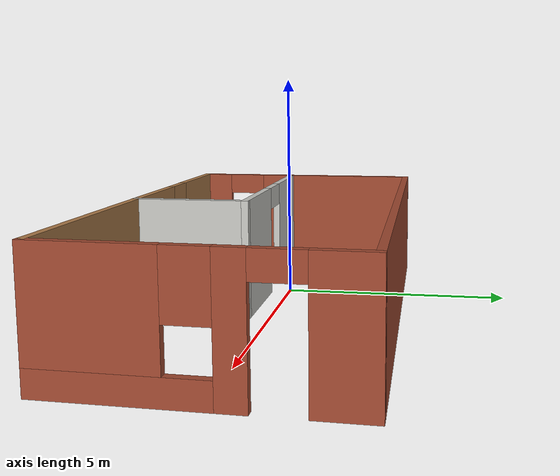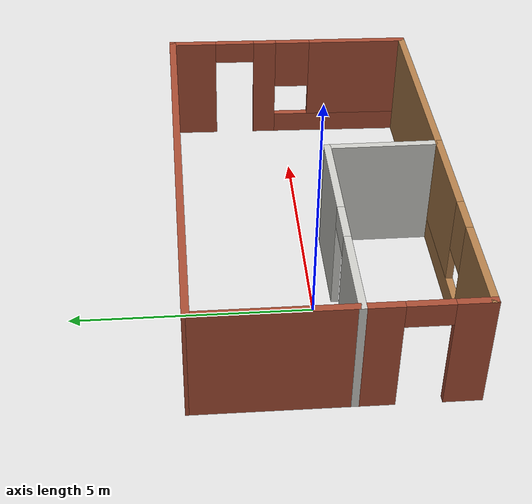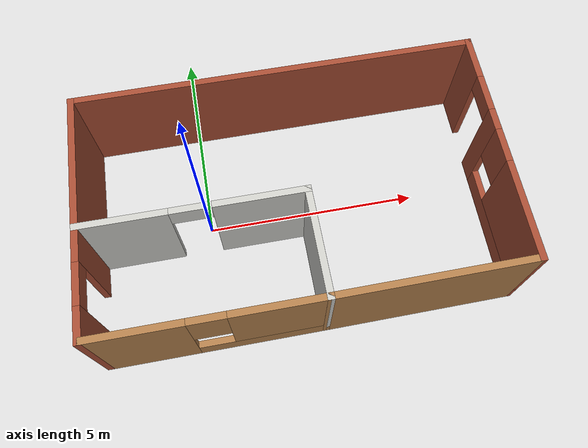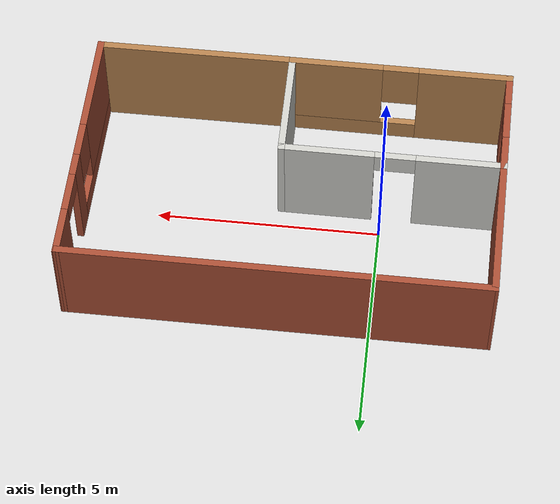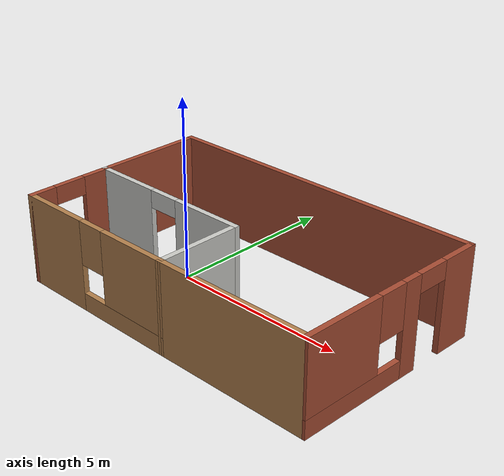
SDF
<?xml version='1.0'?>
<sdf version='1.6'>
  <model name='Building'>
    <pose frame=''>2.06014 -0.084101 0 0 -0 0</pose>
    <link name='Wall_0'>
      <pose frame=''>-2.23514 -2.7359 0 0 -0 0</pose>
      <visual name='Wall_0_Visual_0'>
        <pose frame=''>-1.4525 0 1.25 0 -0 0</pose>
        <geometry>
          <box>
            <size>2.095 0.15 2.5</size>
          </box>
        </geometry>
        <material>
          <script>
            <uri>file://media/materials/scripts/gazebo.material</uri>
            <name>Gazebo/Wood</name>
          </script>
          <ambient>0.921569 0.807843 0.615686 1</ambient>
        </material>
        <meta>
          <layer>0</layer>
        </meta>
      </visual>
      <collision name='Wall_0_Collision_0'>
        <geometry>
          <box>
            <size>2.095 0.15 2.5</size>
          </box>
        </geometry>
        <pose frame=''>-1.4525 0 1.25 0 -0 0</pose>
      </collision>
      <visual name='Wall_0_Visual_1'>
        <pose frame=''>1.0475 0 0.25 0 -0 0</pose>
        <geometry>
          <box>
            <size>2.905 0.15 0.5</size>
          </box>
        </geometry>
        <material>
          <script>
            <uri>file://media/materials/scripts/gazebo.material</uri>
            <name>Gazebo/Wood</name>
          </script>
          <ambient>0.921569 0.807843 0.615686 1</ambient>
        </material>
        <meta>
          <layer>0</layer>
        </meta>
      </visual>
      <collision name='Wall_0_Collision_1'>
        <geometry>
          <box>
            <size>2.905 0.15 0.5</size>
          </box>
        </geometry>
        <pose frame=''>1.0475 0 0.25 0 -0 0</pose>
      </collision>
      <visual name='Wall_0_Visual_2'>
        <pose frame=''>1.4475 0 1.5 0 -0 0</pose>
        <geometry>
          <box>
            <size>2.105 0.15 2</size>
          </box>
        </geometry>
        <material>
          <script>
            <uri>file://media/materials/scripts/gazebo.material</uri>
            <name>Gazebo/Wood</name>
          </script>
          <ambient>0.921569 0.807843 0.615686 1</ambient>
        </material>
        <meta>
          <layer>0</layer>
        </meta>
      </visual>
      <collision name='Wall_0_Collision_2'>
        <geometry>
          <box>
            <size>2.105 0.15 2</size>
          </box>
        </geometry>
        <pose frame=''>1.4475 0 1.5 0 -0 0</pose>
      </collision>
      <visual name='Wall_0_Visual_3'>
        <pose frame=''>-0.005 0 1.9 0 -0 0</pose>
        <geometry>
          <box>
            <size>0.8 0.15 1.2</size>
          </box>
        </geometry>
        <material>
          <script>
            <uri>file://media/materials/scripts/gazebo.material</uri>
            <name>Gazebo/Wood</name>
          </script>
          <ambient>0.921569 0.807843 0.615686 1</ambient>
        </material>
        <meta>
          <layer>0</layer>
        </meta>
      </visual>
      <collision name='Wall_0_Collision_3'>
        <geometry>
          <box>
            <size>0.8 0.15 1.2</size>
          </box>
        </geometry>
        <pose frame=''>-0.005 0 1.9 0 -0 0</pose>
      </collision>
    </link>
    <link name='Wall_1'>
      <collision name='Wall_1_Collision'>
        <geometry>
          <box>
            <size>2.5 0.15 2.5</size>
          </box>
        </geometry>
        <pose frame=''>0 0 1.25 0 -0 0</pose>
      </collision>
      <visual name='Wall_1_Visual'>
        <pose frame=''>0 0 1.25 0 -0 0</pose>
        <geometry>
          <box>
            <size>2.5 0.15 2.5</size>
          </box>
        </geometry>
        <material>
          <script>
            <uri>file://media/materials/scripts/gazebo.material</uri>
            <name>Gazebo/CeilingTiled</name>
          </script>
          <ambient>1 1 1 1</ambient>
        </material>
        <meta>
          <layer>0</layer>
        </meta>
      </visual>
      <pose frame=''>0.189859 -1.5609 0 0 -0 1.5708</pose>
    </link>
    <link name='Wall_2'>
      <pose frame=''>-2.23514 -0.385899 0 0 -0 3.14159</pose>
      <visual name='Wall_2_Visual_0'>
        <pose frame=''>-1.44337 0 1.25 0 -0 0</pose>
        <geometry>
          <box>
            <size>2.11326 0.15 2.5</size>
          </box>
        </geometry>
        <material>
          <script>
            <uri>file://media/materials/scripts/gazebo.material</uri>
            <name>Gazebo/CeilingTiled</name>
          </script>
          <ambient>0.921569 0.807843 0.615686 1</ambient>
        </material>
        <meta>
          <layer>0</layer>
        </meta>
      </visual>
      <collision name='Wall_2_Collision_0'>
        <geometry>
          <box>
            <size>2.11326 0.15 2.5</size>
          </box>
        </geometry>
        <pose frame=''>-1.44337 0 1.25 0 -0 0</pose>
      </collision>
      <visual name='Wall_2_Visual_1'>
        <pose frame=''>1.50663 0 1.25 0 -0 0</pose>
        <geometry>
          <box>
            <size>1.98674 0.15 2.5</size>
          </box>
        </geometry>
        <material>
          <script>
            <uri>file://media/materials/scripts/gazebo.material</uri>
            <name>Gazebo/CeilingTiled</name>
          </script>
          <ambient>0.921569 0.807843 0.615686 1</ambient>
        </material>
        <meta>
          <layer>0</layer>
        </meta>
      </visual>
      <collision name='Wall_2_Collision_1'>
        <geometry>
          <box>
            <size>1.98674 0.15 2.5</size>
          </box>
        </geometry>
        <pose frame=''>1.50663 0 1.25 0 -0 0</pose>
      </collision>
      <visual name='Wall_2_Visual_2'>
        <pose frame=''>0.063261 0 2.25 0 -0 0</pose>
        <geometry>
          <box>
            <size>0.9 0.15 0.5</size>
          </box>
        </geometry>
        <material>
          <script>
            <uri>file://media/materials/scripts/gazebo.material</uri>
            <name>Gazebo/CeilingTiled</name>
          </script>
          <ambient>0.921569 0.807843 0.615686 1</ambient>
        </material>
        <meta>
          <layer>0</layer>
        </meta>
      </visual>
      <collision name='Wall_2_Collision_2'>
        <geometry>
          <box>
            <size>0.9 0.15 0.5</size>
          </box>
        </geometry>
        <pose frame=''>0.063261 0 2.25 0 -0 0</pose>
      </collision>
    </link>
    <link name='Wall_3'>
      <pose frame=''>-4.66014 -1.5609 0 0 0 -1.5708</pose>
      <visual name='Wall_3_Visual_0'>
        <pose frame=''>-0.8325 0 1.25 0 -0 0</pose>
        <geometry>
          <box>
            <size>0.835 0.15 2.5</size>
          </box>
        </geometry>
        <material>
          <script>
            <uri>file://media/materials/scripts/gazebo.material</uri>
            <name>Gazebo/Bricks</name>
          </script>
          <ambient>0.921569 0.807843 0.615686 1</ambient>
        </material>
        <meta>
          <layer>0</layer>
        </meta>
      </visual>
      <collision name='Wall_3_Collision_0'>
        <geometry>
          <box>
            <size>0.835 0.15 2.5</size>
          </box>
        </geometry>
        <pose frame=''>-0.8325 0 1.25 0 -0 0</pose>
      </collision>
      <visual name='Wall_3_Visual_1'>
        <pose frame=''>0.8675 0 1.25 0 -0 0</pose>
        <geometry>
          <box>
            <size>0.765 0.15 2.5</size>
          </box>
        </geometry>
        <material>
          <script>
            <uri>file://media/materials/scripts/gazebo.material</uri>
            <name>Gazebo/Bricks</name>
          </script>
          <ambient>0.921569 0.807843 0.615686 1</ambient>
        </material>
        <meta>
          <layer>0</layer>
        </meta>
      </visual>
      <collision name='Wall_3_Collision_1'>
        <geometry>
          <box>
            <size>0.765 0.15 2.5</size>
          </box>
        </geometry>
        <pose frame=''>0.8675 0 1.25 0 -0 0</pose>
      </collision>
      <visual name='Wall_3_Visual_2'>
        <pose frame=''>0.035 0 2.25 0 -0 0</pose>
        <geometry>
          <box>
            <size>0.9 0.15 0.5</size>
          </box>
        </geometry>
        <material>
          <script>
            <uri>file://media/materials/scripts/gazebo.material</uri>
            <name>Gazebo/Bricks</name>
          </script>
          <ambient>0.921569 0.807843 0.615686 1</ambient>
        </material>
        <meta>
          <layer>0</layer>
        </meta>
      </visual>
      <collision name='Wall_3_Collision_2'>
        <geometry>
          <box>
            <size>0.9 0.15 0.5</size>
          </box>
        </geometry>
        <pose frame=''>0.035 0 2.25 0 -0 0</pose>
      </collision>
    </link>
    <link name='Wall_5'>
      <collision name='Wall_5_Collision'>
        <geometry>
          <box>
            <size>3.25 0.15 2.5</size>
          </box>
        </geometry>
        <pose frame=''>0 0 1.25 0 -0 0</pose>
      </collision>
      <visual name='Wall_5_Visual'>
        <pose frame=''>0 0 1.25 0 -0 0</pose>
        <geometry>
          <box>
            <size>3.25 0.15 2.5</size>
          </box>
        </geometry>
        <material>
          <script>
            <uri>file://media/materials/scripts/gazebo.material</uri>
            <name>Gazebo/Bricks</name>
          </script>
          <ambient>0.921569 0.807843 0.615686 1</ambient>
        </material>
        <meta>
          <layer>0</layer>
        </meta>
      </visual>
      <pose frame=''>-4.66014 1.1641 0 0 -0 1.5708</pose>
    </link>
    <link name='Wall_6'>
      <collision name='Wall_6_Collision'>
        <geometry>
          <box>
            <size>9.44832 0.15 2.5</size>
          </box>
        </geometry>
        <pose frame=''>0 0 1.25 0 -0 0</pose>
      </collision>
      <visual name='Wall_6_Visual'>
        <pose frame=''>0 0 1.25 0 -0 0</pose>
        <geometry>
          <box>
            <size>9.44832 0.15 2.5</size>
          </box>
        </geometry>
        <material>
          <script>
            <uri>file://media/materials/scripts/gazebo.material</uri>
            <name>Gazebo/Bricks</name>
          </script>
          <ambient>0.435294 0.796078 0.67451 1</ambient>
        </material>
        <meta>
          <layer>0</layer>
        </meta>
      </visual>
      <pose frame=''>-0.010993 2.72416 0 0 -0 0.002163</pose>
    </link>
    <link name='Wall_7'>
      <pose frame=''>4.58327 0.009214 0 0 0 -1.59831</pose>
      <visual name='Wall_7_Visual_0'>
        <pose frame=''>-2.25462 0 1.25 0 -0 0</pose>
        <geometry>
          <box>
            <size>1.09283 0.15 2.5</size>
          </box>
        </geometry>
        <material>
          <script>
            <uri>file://media/materials/scripts/gazebo.material</uri>
            <name>Gazebo/Bricks</name>
          </script>
          <ambient>0.435294 0.796078 0.67451 1</ambient>
        </material>
        <meta>
          <layer>0</layer>
        </meta>
      </visual>
      <collision name='Wall_7_Collision_0'>
        <geometry>
          <box>
            <size>1.09283 0.15 2.5</size>
          </box>
        </geometry>
        <pose frame=''>-2.25462 0 1.25 0 -0 0</pose>
      </collision>
      <visual name='Wall_7_Visual_1'>
        <pose frame=''>-0.544944 0 1.25 0 -0 0</pose>
        <geometry>
          <box>
            <size>0.526518 0.15 2.5</size>
          </box>
        </geometry>
        <material>
          <script>
            <uri>file://media/materials/scripts/gazebo.material</uri>
            <name>Gazebo/Bricks</name>
          </script>
          <ambient>0.435294 0.796078 0.67451 1</ambient>
        </material>
        <meta>
          <layer>0</layer>
        </meta>
      </visual>
      <collision name='Wall_7_Collision_1'>
        <geometry>
          <box>
            <size>0.526518 0.15 2.5</size>
          </box>
        </geometry>
        <pose frame=''>-0.544944 0 1.25 0 -0 0</pose>
      </collision>
      <visual name='Wall_7_Visual_2'>
        <pose frame=''>1.25967 0 0.25 0 -0 0</pose>
        <geometry>
          <box>
            <size>3.08272 0.15 0.5</size>
          </box>
        </geometry>
        <material>
          <script>
            <uri>file://media/materials/scripts/gazebo.material</uri>
            <name>Gazebo/Bricks</name>
          </script>
          <ambient>0.435294 0.796078 0.67451 1</ambient>
        </material>
        <meta>
          <layer>0</layer>
        </meta>
      </visual>
      <collision name='Wall_7_Collision_2'>
        <geometry>
          <box>
            <size>3.08272 0.15 0.5</size>
          </box>
        </geometry>
        <pose frame=''>1.25967 0 0.25 0 -0 0</pose>
      </collision>
      <visual name='Wall_7_Visual_3'>
        <pose frame=''>1.65967 0 1.5 0 -0 0</pose>
        <geometry>
          <box>
            <size>2.28272 0.15 2</size>
          </box>
        </geometry>
        <material>
          <script>
            <uri>file://media/materials/scripts/gazebo.material</uri>
            <name>Gazebo/Bricks</name>
          </script>
          <ambient>0.435294 0.796078 0.67451 1</ambient>
        </material>
        <meta>
          <layer>0</layer>
        </meta>
      </visual>
      <collision name='Wall_7_Collision_3'>
        <geometry>
          <box>
            <size>2.28272 0.15 2</size>
          </box>
        </geometry>
        <pose frame=''>1.65967 0 1.5 0 -0 0</pose>
      </collision>
      <visual name='Wall_7_Visual_4'>
        <pose frame=''>0.118315 0 1.9 0 -0 0</pose>
        <geometry>
          <box>
            <size>0.8 0.15 1.2</size>
          </box>
        </geometry>
        <material>
          <script>
            <uri>file://media/materials/scripts/gazebo.material</uri>
            <name>Gazebo/Bricks</name>
          </script>
          <ambient>0.435294 0.796078 0.67451 1</ambient>
        </material>
        <meta>
          <layer>0</layer>
        </meta>
      </visual>
      <collision name='Wall_7_Collision_4'>
        <geometry>
          <box>
            <size>0.8 0.15 1.2</size>
          </box>
        </geometry>
        <pose frame=''>0.118315 0 1.9 0 -0 0</pose>
      </collision>
      <visual name='Wall_7_Visual_5'>
        <pose frame=''>-1.2582 0 2.25 0 -0 0</pose>
        <geometry>
          <box>
            <size>0.9 0.15 0.5</size>
          </box>
        </geometry>
        <material>
          <script>
            <uri>file://media/materials/scripts/gazebo.material</uri>
            <name>Gazebo/Bricks</name>
          </script>
          <ambient>0.435294 0.796078 0.67451 1</ambient>
        </material>
        <meta>
          <layer>0</layer>
        </meta>
      </visual>
      <collision name='Wall_7_Collision_5'>
        <geometry>
          <box>
            <size>0.9 0.15 0.5</size>
          </box>
        </geometry>
        <pose frame=''>-1.2582 0 2.25 0 -0 0</pose>
      </collision>
    </link>
    <link name='Wall_8'>
      <collision name='Wall_8_Collision'>
        <geometry>
          <box>
            <size>4.44834 0.15 2.5</size>
          </box>
        </geometry>
        <pose frame=''>0 0 1.25 0 -0 0</pose>
      </collision>
      <visual name='Wall_8_Visual'>
        <pose frame=''>0 0 1.25 0 -0 0</pose>
        <geometry>
          <box>
            <size>4.44834 0.15 2.5</size>
          </box>
        </geometry>
        <material>
          <script>
            <uri>file://media/materials/scripts/gazebo.material</uri>
            <name>Gazebo/Wood</name>
          </script>
          <ambient>0.996078 0.47451 0.0196078 1</ambient>
        </material>
        <meta>
          <layer>0</layer>
        </meta>
      </visual>
      <pose frame=''>2.33901 -2.72584 0 0 0 -3.13691</pose>
    </link>
    <static>1</static>
  </model>
</sdf>
